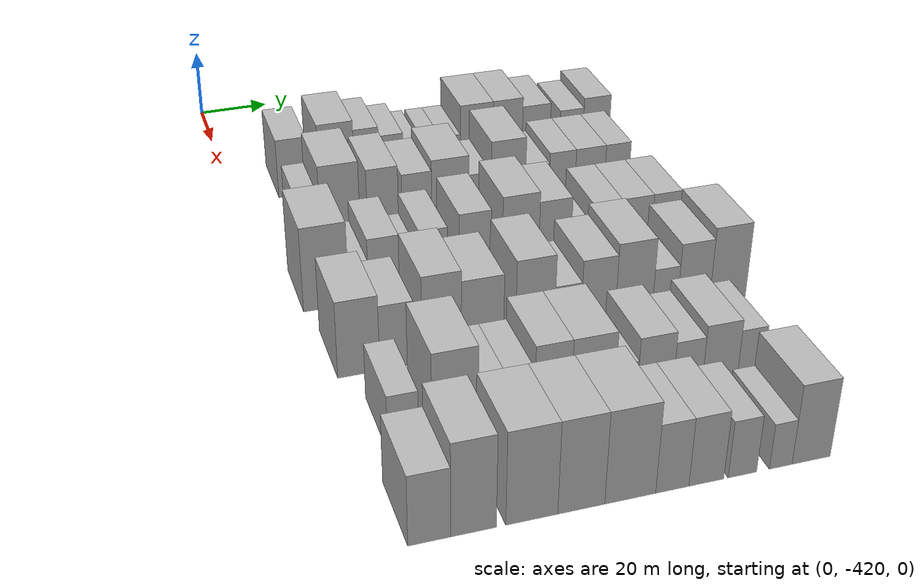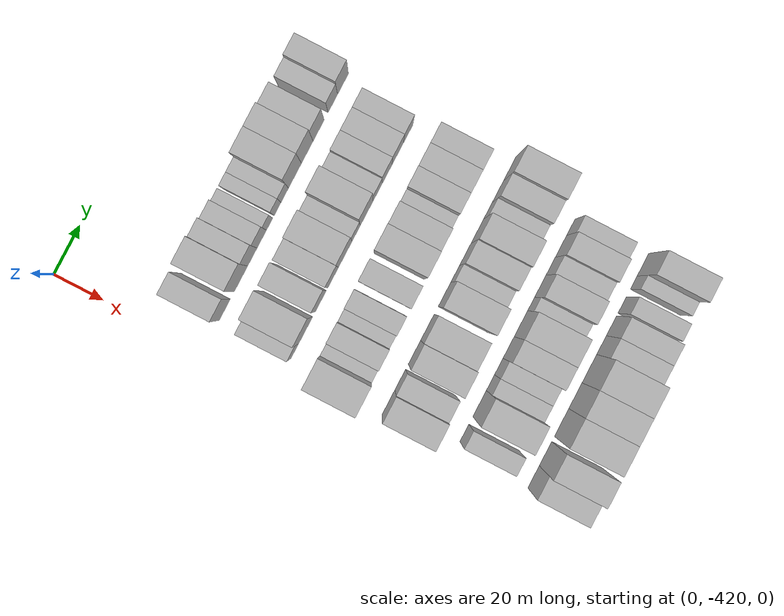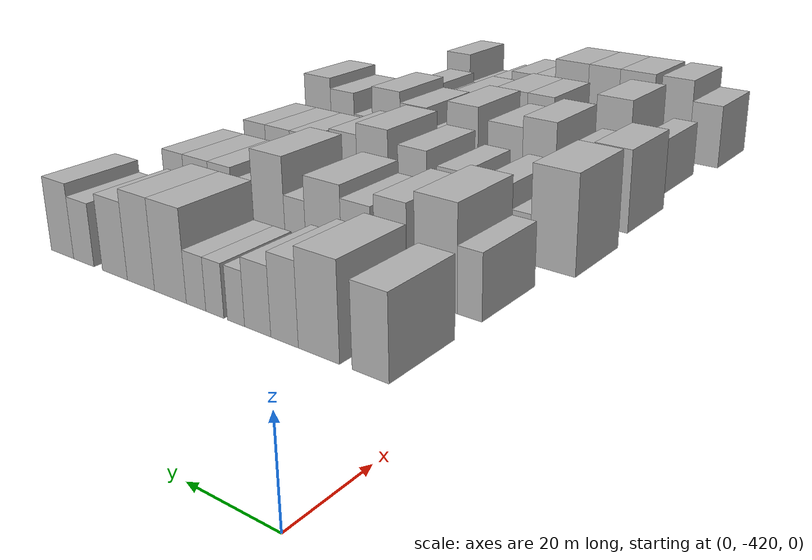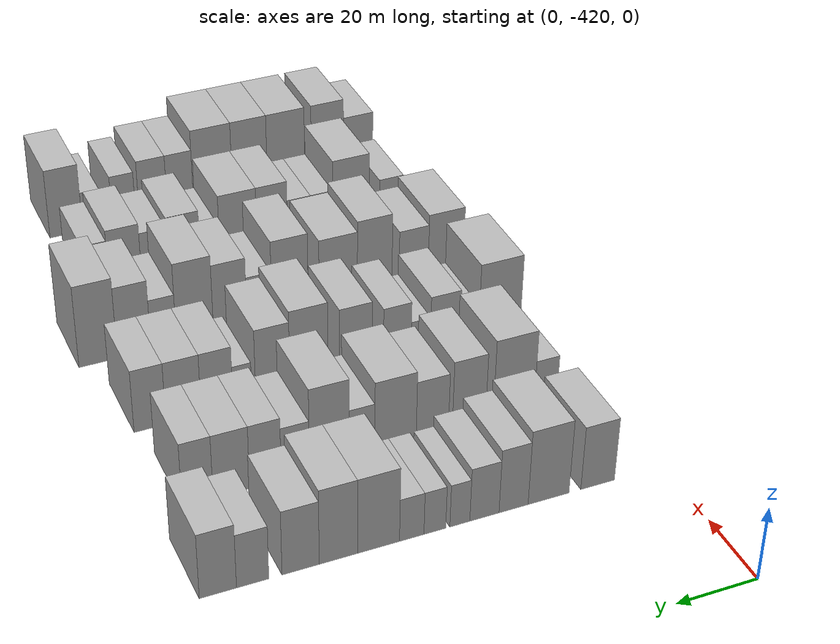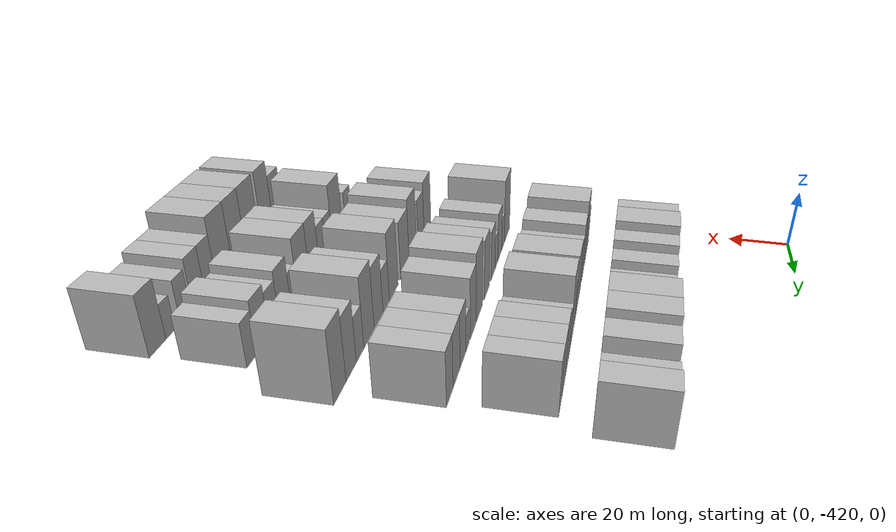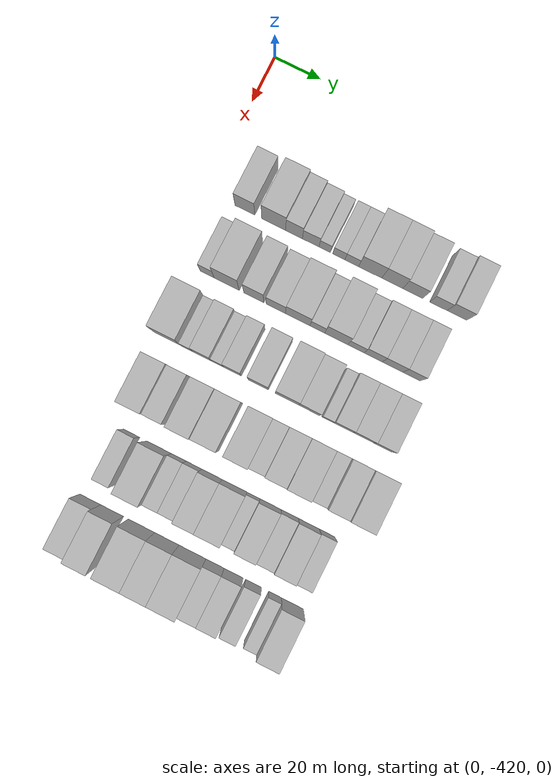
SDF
<sdf version="1.6">
 <world name="default">
  <model name="building_13">
   <static>1</static>
   <pose>50.0000 -402.8632 0 0.000000 0.000000 0.000000</pose>
   <link name="link">
    <pose>0 0 9.00 0 0 0</pose>
    <collision name="collision"><geometry><box><size>20.0000 8.6158 18.0000</size></box></geometry></collision>
    <visual name="visual">
     <cast_shadows>0</cast_shadows>
     <geometry><box><size>20.0000 8.6158 18.0000</size></box></geometry>
     <material>
      <script>
       <uri>model://HANNAS_wall/materials/scripts</uri>
       <uri>model://HANNAS_wall/materials/textures</uri>
       <name>vrc/HANNAS_wall</name>
      </script>
     </material>
    </visual>
   </link>
  </model>
  <model name="building_14">
   <static>1</static>
   <pose>50.0000 -390.3938 0 0.000000 0.000000 0.000000</pose>
   <link name="link">
    <pose>0 0 10.50 0 0 0</pose>
    <collision name="collision"><geometry><box><size>20.0000 10.3229 21.0000</size></box></geometry></collision>
    <visual name="visual">
     <cast_shadows>0</cast_shadows>
     <geometry><box><size>20.0000 10.3229 21.0000</size></box></geometry>
     <material>
      <script>
       <uri>model://HANNAS_wall/materials/scripts</uri>
       <uri>model://HANNAS_wall/materials/textures</uri>
       <name>vrc/HANNAS_wall</name>
      </script>
     </material>
    </visual>
   </link>
  </model>
  <model name="building_15">
   <static>1</static>
   <pose>50.0000 -381.6118 0 0.000000 0.000000 0.000000</pose>
   <link name="link">
    <pose>0 0 9.00 0 0 0</pose>
    <collision name="collision"><geometry><box><size>20.0000 7.2413 18.0000</size></box></geometry></collision>
    <visual name="visual">
     <cast_shadows>0</cast_shadows>
     <geometry><box><size>20.0000 7.2413 18.0000</size></box></geometry>
     <material>
      <script>
       <uri>model://HANNAS_wall/materials/scripts</uri>
       <uri>model://HANNAS_wall/materials/textures</uri>
       <name>vrc/HANNAS_wall</name>
      </script>
     </material>
    </visual>
   </link>
  </model>
  <model name="building_16">
   <static>1</static>
   <pose>50.0000 -374.4007 0 0.000000 0.000000 0.000000</pose>
   <link name="link">
    <pose>0 0 7.50 0 0 0</pose>
    <collision name="collision"><geometry><box><size>20.0000 7.1808 15.0000</size></box></geometry></collision>
    <visual name="visual">
     <cast_shadows>0</cast_shadows>
     <geometry><box><size>20.0000 7.1808 15.0000</size></box></geometry>
     <material>
      <script>
       <uri>model://HANNAS_wall/materials/scripts</uri>
       <uri>model://HANNAS_wall/materials/textures</uri>
       <name>vrc/HANNAS_wall</name>
      </script>
     </material>
    </visual>
   </link>
  </model>
  <model name="building_17">
   <static>1</static>
   <pose>50.0000 -368.3718 0 0.000000 0.000000 0.000000</pose>
   <link name="link">
    <pose>0 0 6.00 0 0 0</pose>
    <collision name="collision"><geometry><box><size>20.0000 4.8771 12.0000</size></box></geometry></collision>
    <visual name="visual">
     <cast_shadows>0</cast_shadows>
     <geometry><box><size>20.0000 4.8771 12.0000</size></box></geometry>
     <material>
      <script>
       <uri>model://HANNAS_wall/materials/scripts</uri>
       <uri>model://HANNAS_wall/materials/textures</uri>
       <name>vrc/HANNAS_wall</name>
      </script>
     </material>
    </visual>
   </link>
  </model>
  <model name="building_18">
   <static>1</static>
   <pose>50.0000 -362.2964 0 0.000000 0.000000 0.000000</pose>
   <link name="link">
    <pose>0 0 6.00 0 0 0</pose>
    <collision name="collision"><geometry><box><size>20.0000 5.2736 12.0000</size></box></geometry></collision>
    <visual name="visual">
     <cast_shadows>0</cast_shadows>
     <geometry><box><size>20.0000 5.2736 12.0000</size></box></geometry>
     <material>
      <script>
       <uri>model://HANNAS_wall/materials/scripts</uri>
       <uri>model://HANNAS_wall/materials/textures</uri>
       <name>vrc/HANNAS_wall</name>
      </script>
     </material>
    </visual>
   </link>
  </model>
  <model name="building_19">
   <static>1</static>
   <pose>50.0000 -356.7223 0 0.000000 0.000000 0.000000</pose>
   <link name="link">
    <pose>0 0 6.00 0 0 0</pose>
    <collision name="collision"><geometry><box><size>20.0000 5.8747 12.0000</size></box></geometry></collision>
    <visual name="visual">
     <cast_shadows>0</cast_shadows>
     <geometry><box><size>20.0000 5.8747 12.0000</size></box></geometry>
     <material>
      <script>
       <uri>model://HANNAS_wall/materials/scripts</uri>
       <uri>model://HANNAS_wall/materials/textures</uri>
       <name>vrc/HANNAS_wall</name>
      </script>
     </material>
    </visual>
   </link>
  </model>
  <model name="building_20">
   <static>1</static>
   <pose>50.0000 -348.7976 0 0.000000 0.000000 0.000000</pose>
   <link name="link">
    <pose>0 0 10.50 0 0 0</pose>
    <collision name="collision"><geometry><box><size>20.0000 9.9748 21.0000</size></box></geometry></collision>
    <visual name="visual">
     <cast_shadows>0</cast_shadows>
     <geometry><box><size>20.0000 9.9748 21.0000</size></box></geometry>
     <material>
      <script>
       <uri>model://HANNAS_wall/materials/scripts</uri>
       <uri>model://HANNAS_wall/materials/textures</uri>
       <name>vrc/HANNAS_wall</name>
      </script>
     </material>
    </visual>
   </link>
  </model>
  <model name="building_21">
   <static>1</static>
   <pose>50.0000 -339.3319 0 0.000000 0.000000 0.000000</pose>
   <link name="link">
    <pose>0 0 10.50 0 0 0</pose>
    <collision name="collision"><geometry><box><size>20.0000 8.9566 21.0000</size></box></geometry></collision>
    <visual name="visual">
     <cast_shadows>0</cast_shadows>
     <geometry><box><size>20.0000 8.9566 21.0000</size></box></geometry>
     <material>
      <script>
       <uri>model://HANNAS_wall/materials/scripts</uri>
       <uri>model://HANNAS_wall/materials/textures</uri>
       <name>vrc/HANNAS_wall</name>
      </script>
     </material>
    </visual>
   </link>
  </model>
  <model name="building_22">
   <static>1</static>
   <pose>50.0000 -330.5562 0 0.000000 0.000000 0.000000</pose>
   <link name="link">
    <pose>0 0 9.00 0 0 0</pose>
    <collision name="collision"><geometry><box><size>20.0000 8.5948 18.0000</size></box></geometry></collision>
    <visual name="visual">
     <cast_shadows>0</cast_shadows>
     <geometry><box><size>20.0000 8.5948 18.0000</size></box></geometry>
     <material>
      <script>
       <uri>model://HANNAS_wall/materials/scripts</uri>
       <uri>model://HANNAS_wall/materials/textures</uri>
       <name>vrc/HANNAS_wall</name>
      </script>
     </material>
    </visual>
   </link>
  </model>
  <model name="building_23">
   <static>1</static>
   <pose>50.0000 -319.5803 0 0.000000 0.000000 0.000000</pose>
   <link name="link">
    <pose>0 0 7.50 0 0 0</pose>
    <collision name="collision"><geometry><box><size>20.0000 7.3570 15.0000</size></box></geometry></collision>
    <visual name="visual">
     <cast_shadows>0</cast_shadows>
     <geometry><box><size>20.0000 7.3570 15.0000</size></box></geometry>
     <material>
      <script>
       <uri>model://HANNAS_wall/materials/scripts</uri>
       <uri>model://HANNAS_wall/materials/textures</uri>
       <name>vrc/HANNAS_wall</name>
      </script>
     </material>
    </visual>
   </link>
  </model>
  <model name="building_24">
   <static>1</static>
   <pose>50.0000 -311.7137 0 0.000000 0.000000 0.000000</pose>
   <link name="link">
    <pose>0 0 9.00 0 0 0</pose>
    <collision name="collision"><geometry><box><size>20.0000 8.3763 18.0000</size></box></geometry></collision>
    <visual name="visual">
     <cast_shadows>0</cast_shadows>
     <geometry><box><size>20.0000 8.3763 18.0000</size></box></geometry>
     <material>
      <script>
       <uri>model://HANNAS_wall/materials/scripts</uri>
       <uri>model://HANNAS_wall/materials/textures</uri>
       <name>vrc/HANNAS_wall</name>
      </script>
     </material>
    </visual>
   </link>
  </model>
  <model name="building_130">
   <static>1</static>
   <pose>79.0000 -404.3512 0 0.000000 0.000000 0.000000</pose>
   <link name="link">
    <pose>0 0 7.50 0 0 0</pose>
    <collision name="collision"><geometry><box><size>20.0000 6.0282 15.0000</size></box></geometry></collision>
    <visual name="visual">
     <cast_shadows>0</cast_shadows>
     <geometry><box><size>20.0000 6.0282 15.0000</size></box></geometry>
     <material>
      <script>
       <uri>model://HANNAS_wall/materials/scripts</uri>
       <uri>model://HANNAS_wall/materials/textures</uri>
       <name>vrc/HANNAS_wall</name>
      </script>
     </material>
    </visual>
   </link>
  </model>
  <model name="building_131">
   <static>1</static>
   <pose>79.0000 -395.9586 0 0.000000 0.000000 0.000000</pose>
   <link name="link">
    <pose>0 0 12.00 0 0 0</pose>
    <collision name="collision"><geometry><box><size>20.0000 10.7570 24.0000</size></box></geometry></collision>
    <visual name="visual">
     <cast_shadows>0</cast_shadows>
     <geometry><box><size>20.0000 10.7570 24.0000</size></box></geometry>
     <material>
      <script>
       <uri>model://HANNAS_wall/materials/scripts</uri>
       <uri>model://HANNAS_wall/materials/textures</uri>
       <name>vrc/HANNAS_wall</name>
      </script>
     </material>
    </visual>
   </link>
  </model>
  <model name="building_132">
   <static>1</static>
   <pose>79.0000 -384.2821 0 0.000000 0.000000 0.000000</pose>
   <link name="link">
    <pose>0 0 10.50 0 0 0</pose>
    <collision name="collision"><geometry><box><size>20.0000 8.5961 21.0000</size></box></geometry></collision>
    <visual name="visual">
     <cast_shadows>0</cast_shadows>
     <geometry><box><size>20.0000 8.5961 21.0000</size></box></geometry>
     <material>
      <script>
       <uri>model://HANNAS_wall/materials/scripts</uri>
       <uri>model://HANNAS_wall/materials/textures</uri>
       <name>vrc/HANNAS_wall</name>
      </script>
     </material>
    </visual>
   </link>
  </model>
  <model name="building_133">
   <static>1</static>
   <pose>79.0000 -374.8531 0 0.000000 0.000000 0.000000</pose>
   <link name="link">
    <pose>0 0 9.00 0 0 0</pose>
    <collision name="collision"><geometry><box><size>20.0000 8.2618 18.0000</size></box></geometry></collision>
    <visual name="visual">
     <cast_shadows>0</cast_shadows>
     <geometry><box><size>20.0000 8.2618 18.0000</size></box></geometry>
     <material>
      <script>
       <uri>model://HANNAS_wall/materials/scripts</uri>
       <uri>model://HANNAS_wall/materials/textures</uri>
       <name>vrc/HANNAS_wall</name>
      </script>
     </material>
    </visual>
   </link>
  </model>
  <model name="building_134">
   <static>1</static>
   <pose>79.0000 -365.4770 0 0.000000 0.000000 0.000000</pose>
   <link name="link">
    <pose>0 0 10.50 0 0 0</pose>
    <collision name="collision"><geometry><box><size>20.0000 10.4905 21.0000</size></box></geometry></collision>
    <visual name="visual">
     <cast_shadows>0</cast_shadows>
     <geometry><box><size>20.0000 10.4905 21.0000</size></box></geometry>
     <material>
      <script>
       <uri>model://HANNAS_wall/materials/scripts</uri>
       <uri>model://HANNAS_wall/materials/textures</uri>
       <name>vrc/HANNAS_wall</name>
      </script>
     </material>
    </visual>
   </link>
  </model>
  <model name="building_135">
   <static>1</static>
   <pose>79.0000 -357.0852 0 0.000000 0.000000 0.000000</pose>
   <link name="link">
    <pose>0 0 7.50 0 0 0</pose>
    <collision name="collision"><geometry><box><size>20.0000 6.2930 15.0000</size></box></geometry></collision>
    <visual name="visual">
     <cast_shadows>0</cast_shadows>
     <geometry><box><size>20.0000 6.2930 15.0000</size></box></geometry>
     <material>
      <script>
       <uri>model://HANNAS_wall/materials/scripts</uri>
       <uri>model://HANNAS_wall/materials/textures</uri>
       <name>vrc/HANNAS_wall</name>
      </script>
     </material>
    </visual>
   </link>
  </model>
  <model name="building_136">
   <static>1</static>
   <pose>79.0000 -349.0017 0 0.000000 0.000000 0.000000</pose>
   <link name="link">
    <pose>0 0 12.00 0 0 0</pose>
    <collision name="collision"><geometry><box><size>20.0000 9.8741 24.0000</size></box></geometry></collision>
    <visual name="visual">
     <cast_shadows>0</cast_shadows>
     <geometry><box><size>20.0000 9.8741 24.0000</size></box></geometry>
     <material>
      <script>
       <uri>model://HANNAS_wall/materials/scripts</uri>
       <uri>model://HANNAS_wall/materials/textures</uri>
       <name>vrc/HANNAS_wall</name>
      </script>
     </material>
    </visual>
   </link>
  </model>
  <model name="building_137">
   <static>1</static>
   <pose>79.0000 -340.6125 0 0.000000 0.000000 0.000000</pose>
   <link name="link">
    <pose>0 0 7.50 0 0 0</pose>
    <collision name="collision"><geometry><box><size>20.0000 6.9042 15.0000</size></box></geometry></collision>
    <visual name="visual">
     <cast_shadows>0</cast_shadows>
     <geometry><box><size>20.0000 6.9042 15.0000</size></box></geometry>
     <material>
      <script>
       <uri>model://HANNAS_wall/materials/scripts</uri>
       <uri>model://HANNAS_wall/materials/textures</uri>
       <name>vrc/HANNAS_wall</name>
      </script>
     </material>
    </visual>
   </link>
  </model>
  <model name="building_138">
   <static>1</static>
   <pose>79.0000 -333.3374 0 0.000000 0.000000 0.000000</pose>
   <link name="link">
    <pose>0 0 9.00 0 0 0</pose>
    <collision name="collision"><geometry><box><size>20.0000 7.6460 18.0000</size></box></geometry></collision>
    <visual name="visual">
     <cast_shadows>0</cast_shadows>
     <geometry><box><size>20.0000 7.6460 18.0000</size></box></geometry>
     <material>
      <script>
       <uri>model://HANNAS_wall/materials/scripts</uri>
       <uri>model://HANNAS_wall/materials/textures</uri>
       <name>vrc/HANNAS_wall</name>
      </script>
     </material>
    </visual>
   </link>
  </model>
  <model name="building_139">
   <static>1</static>
   <pose>79.0000 -325.1473 0 0.000000 0.000000 0.000000</pose>
   <link name="link">
    <pose>0 0 9.00 0 0 0</pose>
    <collision name="collision"><geometry><box><size>20.0000 8.7342 18.0000</size></box></geometry></collision>
    <visual name="visual">
     <cast_shadows>0</cast_shadows>
     <geometry><box><size>20.0000 8.7342 18.0000</size></box></geometry>
     <material>
      <script>
       <uri>model://HANNAS_wall/materials/scripts</uri>
       <uri>model://HANNAS_wall/materials/textures</uri>
       <name>vrc/HANNAS_wall</name>
      </script>
     </material>
    </visual>
   </link>
  </model>
  <model name="building_140">
   <static>1</static>
   <pose>79.0000 -317.0994 0 0.000000 0.000000 0.000000</pose>
   <link name="link">
    <pose>0 0 9.00 0 0 0</pose>
    <collision name="collision"><geometry><box><size>20.0000 7.3615 18.0000</size></box></geometry></collision>
    <visual name="visual">
     <cast_shadows>0</cast_shadows>
     <geometry><box><size>20.0000 7.3615 18.0000</size></box></geometry>
     <material>
      <script>
       <uri>model://HANNAS_wall/materials/scripts</uri>
       <uri>model://HANNAS_wall/materials/textures</uri>
       <name>vrc/HANNAS_wall</name>
      </script>
     </material>
    </visual>
   </link>
  </model>
  <model name="building_238">
   <static>1</static>
   <pose>108.0000 -406.3796 0 0.000000 0.000000 0.000000</pose>
   <link name="link">
    <pose>0 0 12.00 0 0 0</pose>
    <collision name="collision"><geometry><box><size>20.0000 11.5512 24.0000</size></box></geometry></collision>
    <visual name="visual">
     <cast_shadows>0</cast_shadows>
     <geometry><box><size>20.0000 11.5512 24.0000</size></box></geometry>
     <material>
      <script>
       <uri>model://HANNAS_wall/materials/scripts</uri>
       <uri>model://HANNAS_wall/materials/textures</uri>
       <name>vrc/HANNAS_wall</name>
      </script>
     </material>
    </visual>
   </link>
  </model>
  <model name="building_239">
   <static>1</static>
   <pose>108.0000 -398.0628 0 0.000000 0.000000 0.000000</pose>
   <link name="link">
    <pose>0 0 6.00 0 0 0</pose>
    <collision name="collision"><geometry><box><size>20.0000 5.0823 12.0000</size></box></geometry></collision>
    <visual name="visual">
     <cast_shadows>0</cast_shadows>
     <geometry><box><size>20.0000 5.0823 12.0000</size></box></geometry>
     <material>
      <script>
       <uri>model://HANNAS_wall/materials/scripts</uri>
       <uri>model://HANNAS_wall/materials/textures</uri>
       <name>vrc/HANNAS_wall</name>
      </script>
     </material>
    </visual>
   </link>
  </model>
  <model name="building_240">
   <static>1</static>
   <pose>108.0000 -391.5006 0 0.000000 0.000000 0.000000</pose>
   <link name="link">
    <pose>0 0 9.00 0 0 0</pose>
    <collision name="collision"><geometry><box><size>20.0000 8.0421 18.0000</size></box></geometry></collision>
    <visual name="visual">
     <cast_shadows>0</cast_shadows>
     <geometry><box><size>20.0000 8.0421 18.0000</size></box></geometry>
     <material>
      <script>
       <uri>model://HANNAS_wall/materials/scripts</uri>
       <uri>model://HANNAS_wall/materials/textures</uri>
       <name>vrc/HANNAS_wall</name>
      </script>
     </material>
    </visual>
   </link>
  </model>
  <model name="building_241">
   <static>1</static>
   <pose>108.0000 -384.8827 0 0.000000 0.000000 0.000000</pose>
   <link name="link">
    <pose>0 0 6.00 0 0 0</pose>
    <collision name="collision"><geometry><box><size>20.0000 5.1937 12.0000</size></box></geometry></collision>
    <visual name="visual">
     <cast_shadows>0</cast_shadows>
     <geometry><box><size>20.0000 5.1937 12.0000</size></box></geometry>
     <material>
      <script>
       <uri>model://HANNAS_wall/materials/scripts</uri>
       <uri>model://HANNAS_wall/materials/textures</uri>
       <name>vrc/HANNAS_wall</name>
      </script>
     </material>
    </visual>
   </link>
  </model>
  <model name="building_242">
   <static>1</static>
   <pose>108.0000 -378.6012 0 0.000000 0.000000 0.000000</pose>
   <link name="link">
    <pose>0 0 9.00 0 0 0</pose>
    <collision name="collision"><geometry><box><size>20.0000 7.3694 18.0000</size></box></geometry></collision>
    <visual name="visual">
     <cast_shadows>0</cast_shadows>
     <geometry><box><size>20.0000 7.3694 18.0000</size></box></geometry>
     <material>
      <script>
       <uri>model://HANNAS_wall/materials/scripts</uri>
       <uri>model://HANNAS_wall/materials/textures</uri>
       <name>vrc/HANNAS_wall</name>
      </script>
     </material>
    </visual>
   </link>
  </model>
  <model name="building_243">
   <static>1</static>
   <pose>108.0000 -367.6492 0 0.000000 0.000000 0.000000</pose>
   <link name="link">
    <pose>0 0 10.50 0 0 0</pose>
    <collision name="collision"><geometry><box><size>20.0000 8.5346 21.0000</size></box></geometry></collision>
    <visual name="visual">
     <cast_shadows>0</cast_shadows>
     <geometry><box><size>20.0000 8.5346 21.0000</size></box></geometry>
     <material>
      <script>
       <uri>model://HANNAS_wall/materials/scripts</uri>
       <uri>model://HANNAS_wall/materials/textures</uri>
       <name>vrc/HANNAS_wall</name>
      </script>
     </material>
    </visual>
   </link>
  </model>
  <model name="building_244">
   <static>1</static>
   <pose>108.0000 -355.4500 0 0.000000 0.000000 0.000000</pose>
   <link name="link">
    <pose>0 0 12.00 0 0 0</pose>
    <collision name="collision"><geometry><box><size>20.0000 9.8638 24.0000</size></box></geometry></collision>
    <visual name="visual">
     <cast_shadows>0</cast_shadows>
     <geometry><box><size>20.0000 9.8638 24.0000</size></box></geometry>
     <material>
      <script>
       <uri>model://HANNAS_wall/materials/scripts</uri>
       <uri>model://HANNAS_wall/materials/textures</uri>
       <name>vrc/HANNAS_wall</name>
      </script>
     </material>
    </visual>
   </link>
  </model>
  <model name="building_245">
   <static>1</static>
   <pose>108.0000 -346.1369 0 0.000000 0.000000 0.000000</pose>
   <link name="link">
    <pose>0 0 10.50 0 0 0</pose>
    <collision name="collision"><geometry><box><size>20.0000 8.7625 21.0000</size></box></geometry></collision>
    <visual name="visual">
     <cast_shadows>0</cast_shadows>
     <geometry><box><size>20.0000 8.7625 21.0000</size></box></geometry>
     <material>
      <script>
       <uri>model://HANNAS_wall/materials/scripts</uri>
       <uri>model://HANNAS_wall/materials/textures</uri>
       <name>vrc/HANNAS_wall</name>
      </script>
     </material>
    </visual>
   </link>
  </model>
  <model name="building_246">
   <static>1</static>
   <pose>108.0000 -338.3541 0 0.000000 0.000000 0.000000</pose>
   <link name="link">
    <pose>0 0 6.00 0 0 0</pose>
    <collision name="collision"><geometry><box><size>20.0000 4.8031 12.0000</size></box></geometry></collision>
    <visual name="visual">
     <cast_shadows>0</cast_shadows>
     <geometry><box><size>20.0000 4.8031 12.0000</size></box></geometry>
     <material>
      <script>
       <uri>model://HANNAS_wall/materials/scripts</uri>
       <uri>model://HANNAS_wall/materials/textures</uri>
       <name>vrc/HANNAS_wall</name>
      </script>
     </material>
    </visual>
   </link>
  </model>
  <model name="building_247">
   <static>1</static>
   <pose>108.0000 -331.9525 0 0.000000 0.000000 0.000000</pose>
   <link name="link">
    <pose>0 0 9.00 0 0 0</pose>
    <collision name="collision"><geometry><box><size>20.0000 8.0001 18.0000</size></box></geometry></collision>
    <visual name="visual">
     <cast_shadows>0</cast_shadows>
     <geometry><box><size>20.0000 8.0001 18.0000</size></box></geometry>
     <material>
      <script>
       <uri>model://HANNAS_wall/materials/scripts</uri>
       <uri>model://HANNAS_wall/materials/textures</uri>
       <name>vrc/HANNAS_wall</name>
      </script>
     </material>
    </visual>
   </link>
  </model>
  <model name="building_248">
   <static>1</static>
   <pose>108.0000 -323.5618 0 0.000000 0.000000 0.000000</pose>
   <link name="link">
    <pose>0 0 9.00 0 0 0</pose>
    <collision name="collision"><geometry><box><size>20.0000 8.7813 18.0000</size></box></geometry></collision>
    <visual name="visual">
     <cast_shadows>0</cast_shadows>
     <geometry><box><size>20.0000 8.7813 18.0000</size></box></geometry>
     <material>
      <script>
       <uri>model://HANNAS_wall/materials/scripts</uri>
       <uri>model://HANNAS_wall/materials/textures</uri>
       <name>vrc/HANNAS_wall</name>
      </script>
     </material>
    </visual>
   </link>
  </model>
  <model name="building_249">
   <static>1</static>
   <pose>108.0000 -315.2406 0 0.000000 0.000000 0.000000</pose>
   <link name="link">
    <pose>0 0 9.00 0 0 0</pose>
    <collision name="collision"><geometry><box><size>20.0000 7.8610 18.0000</size></box></geometry></collision>
    <visual name="visual">
     <cast_shadows>0</cast_shadows>
     <geometry><box><size>20.0000 7.8610 18.0000</size></box></geometry>
     <material>
      <script>
       <uri>model://HANNAS_wall/materials/scripts</uri>
       <uri>model://HANNAS_wall/materials/textures</uri>
       <name>vrc/HANNAS_wall</name>
      </script>
     </material>
    </visual>
   </link>
  </model>
  <model name="building_345">
   <static>1</static>
   <pose>137.0000 -405.0927 0 0.000000 0.000000 0.000000</pose>
   <link name="link">
    <pose>0 0 10.50 0 0 0</pose>
    <collision name="collision"><geometry><box><size>20.0000 10.0428 21.0000</size></box></geometry></collision>
    <visual name="visual">
     <cast_shadows>0</cast_shadows>
     <geometry><box><size>20.0000 10.0428 21.0000</size></box></geometry>
     <material>
      <script>
       <uri>model://HANNAS_wall/materials/scripts</uri>
       <uri>model://HANNAS_wall/materials/textures</uri>
       <name>vrc/HANNAS_wall</name>
      </script>
     </material>
    </visual>
   </link>
  </model>
  <model name="building_346">
   <static>1</static>
   <pose>137.0000 -395.9506 0 0.000000 0.000000 0.000000</pose>
   <link name="link">
    <pose>0 0 9.00 0 0 0</pose>
    <collision name="collision"><geometry><box><size>20.0000 8.2415 18.0000</size></box></geometry></collision>
    <visual name="visual">
     <cast_shadows>0</cast_shadows>
     <geometry><box><size>20.0000 8.2415 18.0000</size></box></geometry>
     <material>
      <script>
       <uri>model://HANNAS_wall/materials/scripts</uri>
       <uri>model://HANNAS_wall/materials/textures</uri>
       <name>vrc/HANNAS_wall</name>
      </script>
     </material>
    </visual>
   </link>
  </model>
  <model name="building_347">
   <static>1</static>
   <pose>137.0000 -385.0116 0 0.000000 0.000000 0.000000</pose>
   <link name="link">
    <pose>0 0 12.00 0 0 0</pose>
    <collision name="collision"><geometry><box><size>20.0000 9.6364 24.0000</size></box></geometry></collision>
    <visual name="visual">
     <cast_shadows>0</cast_shadows>
     <geometry><box><size>20.0000 9.6364 24.0000</size></box></geometry>
     <material>
      <script>
       <uri>model://HANNAS_wall/materials/scripts</uri>
       <uri>model://HANNAS_wall/materials/textures</uri>
       <name>vrc/HANNAS_wall</name>
      </script>
     </material>
    </visual>
   </link>
  </model>
  <model name="building_348">
   <static>1</static>
   <pose>137.0000 -374.9479 0 0.000000 0.000000 0.000000</pose>
   <link name="link">
    <pose>0 0 10.50 0 0 0</pose>
    <collision name="collision"><geometry><box><size>20.0000 10.4910 21.0000</size></box></geometry></collision>
    <visual name="visual">
     <cast_shadows>0</cast_shadows>
     <geometry><box><size>20.0000 10.4910 21.0000</size></box></geometry>
     <material>
      <script>
       <uri>model://HANNAS_wall/materials/scripts</uri>
       <uri>model://HANNAS_wall/materials/textures</uri>
       <name>vrc/HANNAS_wall</name>
      </script>
     </material>
    </visual>
   </link>
  </model>
  <model name="building_349">
   <static>1</static>
   <pose>137.0000 -361.7807 0 0.000000 0.000000 0.000000</pose>
   <link name="link">
    <pose>0 0 12.00 0 0 0</pose>
    <collision name="collision"><geometry><box><size>20.0000 9.8434 24.0000</size></box></geometry></collision>
    <visual name="visual">
     <cast_shadows>0</cast_shadows>
     <geometry><box><size>20.0000 9.8434 24.0000</size></box></geometry>
     <material>
      <script>
       <uri>model://HANNAS_wall/materials/scripts</uri>
       <uri>model://HANNAS_wall/materials/textures</uri>
       <name>vrc/HANNAS_wall</name>
      </script>
     </material>
    </visual>
   </link>
  </model>
  <model name="building_350">
   <static>1</static>
   <pose>137.0000 -353.4885 0 0.000000 0.000000 0.000000</pose>
   <link name="link">
    <pose>0 0 7.50 0 0 0</pose>
    <collision name="collision"><geometry><box><size>20.0000 6.7409 15.0000</size></box></geometry></collision>
    <visual name="visual">
     <cast_shadows>0</cast_shadows>
     <geometry><box><size>20.0000 6.7409 15.0000</size></box></geometry>
     <material>
      <script>
       <uri>model://HANNAS_wall/materials/scripts</uri>
       <uri>model://HANNAS_wall/materials/textures</uri>
       <name>vrc/HANNAS_wall</name>
      </script>
     </material>
    </visual>
   </link>
  </model>
  <model name="building_351">
   <static>1</static>
   <pose>137.0000 -345.6631 0 0.000000 0.000000 0.000000</pose>
   <link name="link">
    <pose>0 0 10.50 0 0 0</pose>
    <collision name="collision"><geometry><box><size>20.0000 8.9100 21.0000</size></box></geometry></collision>
    <visual name="visual">
     <cast_shadows>0</cast_shadows>
     <geometry><box><size>20.0000 8.9100 21.0000</size></box></geometry>
     <material>
      <script>
       <uri>model://HANNAS_wall/materials/scripts</uri>
       <uri>model://HANNAS_wall/materials/textures</uri>
       <name>vrc/HANNAS_wall</name>
      </script>
     </material>
    </visual>
   </link>
  </model>
  <model name="building_352">
   <static>1</static>
   <pose>137.0000 -336.3282 0 0.000000 0.000000 0.000000</pose>
   <link name="link">
    <pose>0 0 12.00 0 0 0</pose>
    <collision name="collision"><geometry><box><size>20.0000 9.7599 24.0000</size></box></geometry></collision>
    <visual name="visual">
     <cast_shadows>0</cast_shadows>
     <geometry><box><size>20.0000 9.7599 24.0000</size></box></geometry>
     <material>
      <script>
       <uri>model://HANNAS_wall/materials/scripts</uri>
       <uri>model://HANNAS_wall/materials/textures</uri>
       <name>vrc/HANNAS_wall</name>
      </script>
     </material>
    </visual>
   </link>
  </model>
  <model name="building_353">
   <static>1</static>
   <pose>137.0000 -328.1279 0 0.000000 0.000000 0.000000</pose>
   <link name="link">
    <pose>0 0 7.50 0 0 0</pose>
    <collision name="collision"><geometry><box><size>20.0000 6.6406 15.0000</size></box></geometry></collision>
    <visual name="visual">
     <cast_shadows>0</cast_shadows>
     <geometry><box><size>20.0000 6.6406 15.0000</size></box></geometry>
     <material>
      <script>
       <uri>model://HANNAS_wall/materials/scripts</uri>
       <uri>model://HANNAS_wall/materials/textures</uri>
       <name>vrc/HANNAS_wall</name>
      </script>
     </material>
    </visual>
   </link>
  </model>
  <model name="building_354">
   <static>1</static>
   <pose>137.0000 -320.4691 0 0.000000 0.000000 0.000000</pose>
   <link name="link">
    <pose>0 0 10.50 0 0 0</pose>
    <collision name="collision"><geometry><box><size>20.0000 8.6770 21.0000</size></box></geometry></collision>
    <visual name="visual">
     <cast_shadows>0</cast_shadows>
     <geometry><box><size>20.0000 8.6770 21.0000</size></box></geometry>
     <material>
      <script>
       <uri>model://HANNAS_wall/materials/scripts</uri>
       <uri>model://HANNAS_wall/materials/textures</uri>
       <name>vrc/HANNAS_wall</name>
      </script>
     </material>
    </visual>
   </link>
  </model>
  <model name="building_355">
   <static>1</static>
   <pose>137.0000 -311.2210 0 0.000000 0.000000 0.000000</pose>
   <link name="link">
    <pose>0 0 12.00 0 0 0</pose>
    <collision name="collision"><geometry><box><size>20.0000 9.8192 24.0000</size></box></geometry></collision>
    <visual name="visual">
     <cast_shadows>0</cast_shadows>
     <geometry><box><size>20.0000 9.8192 24.0000</size></box></geometry>
     <material>
      <script>
       <uri>model://HANNAS_wall/materials/scripts</uri>
       <uri>model://HANNAS_wall/materials/textures</uri>
       <name>vrc/HANNAS_wall</name>
      </script>
     </material>
    </visual>
   </link>
  </model>
  <model name="building_457">
   <static>1</static>
   <pose>166.0000 -402.2239 0 0.000000 0.000000 0.000000</pose>
   <link name="link">
    <pose>0 0 7.50 0 0 0</pose>
    <collision name="collision"><geometry><box><size>20.0000 6.9403 15.0000</size></box></geometry></collision>
    <visual name="visual">
     <cast_shadows>0</cast_shadows>
     <geometry><box><size>20.0000 6.9403 15.0000</size></box></geometry>
     <material>
      <script>
       <uri>model://HANNAS_wall/materials/scripts</uri>
       <uri>model://HANNAS_wall/materials/textures</uri>
       <name>vrc/HANNAS_wall</name>
      </script>
     </material>
    </visual>
   </link>
  </model>
  <model name="building_458">
   <static>1</static>
   <pose>166.0000 -390.4869 0 0.000000 0.000000 0.000000</pose>
   <link name="link">
    <pose>0 0 12.00 0 0 0</pose>
    <collision name="collision"><geometry><box><size>20.0000 10.5338 24.0000</size></box></geometry></collision>
    <visual name="visual">
     <cast_shadows>0</cast_shadows>
     <geometry><box><size>20.0000 10.5338 24.0000</size></box></geometry>
     <material>
      <script>
       <uri>model://HANNAS_wall/materials/scripts</uri>
       <uri>model://HANNAS_wall/materials/textures</uri>
       <name>vrc/HANNAS_wall</name>
      </script>
     </material>
    </visual>
   </link>
  </model>
  <model name="building_459">
   <static>1</static>
   <pose>166.0000 -382.0645 0 0.000000 0.000000 0.000000</pose>
   <link name="link">
    <pose>0 0 7.50 0 0 0</pose>
    <collision name="collision"><geometry><box><size>20.0000 6.3110 15.0000</size></box></geometry></collision>
    <visual name="visual">
     <cast_shadows>0</cast_shadows>
     <geometry><box><size>20.0000 6.3110 15.0000</size></box></geometry>
     <material>
      <script>
       <uri>model://HANNAS_wall/materials/scripts</uri>
       <uri>model://HANNAS_wall/materials/textures</uri>
       <name>vrc/HANNAS_wall</name>
      </script>
     </material>
    </visual>
   </link>
  </model>
  <model name="building_460">
   <static>1</static>
   <pose>166.0000 -375.5951 0 0.000000 0.000000 0.000000</pose>
   <link name="link">
    <pose>0 0 7.50 0 0 0</pose>
    <collision name="collision"><geometry><box><size>20.0000 6.6277 15.0000</size></box></geometry></collision>
    <visual name="visual">
     <cast_shadows>0</cast_shadows>
     <geometry><box><size>20.0000 6.6277 15.0000</size></box></geometry>
     <material>
      <script>
       <uri>model://HANNAS_wall/materials/scripts</uri>
       <uri>model://HANNAS_wall/materials/textures</uri>
       <name>vrc/HANNAS_wall</name>
      </script>
     </material>
    </visual>
   </link>
  </model>
  <model name="building_461">
   <static>1</static>
   <pose>166.0000 -367.9597 0 0.000000 0.000000 0.000000</pose>
   <link name="link">
    <pose>0 0 10.50 0 0 0</pose>
    <collision name="collision"><geometry><box><size>20.0000 8.6431 21.0000</size></box></geometry></collision>
    <visual name="visual">
     <cast_shadows>0</cast_shadows>
     <geometry><box><size>20.0000 8.6431 21.0000</size></box></geometry>
     <material>
      <script>
       <uri>model://HANNAS_wall/materials/scripts</uri>
       <uri>model://HANNAS_wall/materials/textures</uri>
       <name>vrc/HANNAS_wall</name>
      </script>
     </material>
    </visual>
   </link>
  </model>
  <model name="building_462">
   <static>1</static>
   <pose>166.0000 -358.4221 0 0.000000 0.000000 0.000000</pose>
   <link name="link">
    <pose>0 0 10.50 0 0 0</pose>
    <collision name="collision"><geometry><box><size>20.0000 10.4321 21.0000</size></box></geometry></collision>
    <visual name="visual">
     <cast_shadows>0</cast_shadows>
     <geometry><box><size>20.0000 10.4321 21.0000</size></box></geometry>
     <material>
      <script>
       <uri>model://HANNAS_wall/materials/scripts</uri>
       <uri>model://HANNAS_wall/materials/textures</uri>
       <name>vrc/HANNAS_wall</name>
      </script>
     </material>
    </visual>
   </link>
  </model>
  <model name="building_463">
   <static>1</static>
   <pose>166.0000 -350.4836 0 0.000000 0.000000 0.000000</pose>
   <link name="link">
    <pose>0 0 6.00 0 0 0</pose>
    <collision name="collision"><geometry><box><size>20.0000 5.4449 12.0000</size></box></geometry></collision>
    <visual name="visual">
     <cast_shadows>0</cast_shadows>
     <geometry><box><size>20.0000 5.4449 12.0000</size></box></geometry>
     <material>
      <script>
       <uri>model://HANNAS_wall/materials/scripts</uri>
       <uri>model://HANNAS_wall/materials/textures</uri>
       <name>vrc/HANNAS_wall</name>
      </script>
     </material>
    </visual>
   </link>
  </model>
  <model name="building_464">
   <static>1</static>
   <pose>166.0000 -343.3395 0 0.000000 0.000000 0.000000</pose>
   <link name="link">
    <pose>0 0 9.00 0 0 0</pose>
    <collision name="collision"><geometry><box><size>20.0000 8.8433 18.0000</size></box></geometry></collision>
    <visual name="visual">
     <cast_shadows>0</cast_shadows>
     <geometry><box><size>20.0000 8.8433 18.0000</size></box></geometry>
     <material>
      <script>
       <uri>model://HANNAS_wall/materials/scripts</uri>
       <uri>model://HANNAS_wall/materials/textures</uri>
       <name>vrc/HANNAS_wall</name>
      </script>
     </material>
    </visual>
   </link>
  </model>
  <model name="building_465">
   <static>1</static>
   <pose>166.0000 -335.2858 0 0.000000 0.000000 0.000000</pose>
   <link name="link">
    <pose>0 0 7.50 0 0 0</pose>
    <collision name="collision"><geometry><box><size>20.0000 7.2641 15.0000</size></box></geometry></collision>
    <visual name="visual">
     <cast_shadows>0</cast_shadows>
     <geometry><box><size>20.0000 7.2641 15.0000</size></box></geometry>
     <material>
      <script>
       <uri>model://HANNAS_wall/materials/scripts</uri>
       <uri>model://HANNAS_wall/materials/textures</uri>
       <name>vrc/HANNAS_wall</name>
      </script>
     </material>
    </visual>
   </link>
  </model>
  <model name="building_466">
   <static>1</static>
   <pose>166.0000 -327.2556 0 0.000000 0.000000 0.000000</pose>
   <link name="link">
    <pose>0 0 9.00 0 0 0</pose>
    <collision name="collision"><geometry><box><size>20.0000 8.7962 18.0000</size></box></geometry></collision>
    <visual name="visual">
     <cast_shadows>0</cast_shadows>
     <geometry><box><size>20.0000 8.7962 18.0000</size></box></geometry>
     <material>
      <script>
       <uri>model://HANNAS_wall/materials/scripts</uri>
       <uri>model://HANNAS_wall/materials/textures</uri>
       <name>vrc/HANNAS_wall</name>
      </script>
     </material>
    </visual>
   </link>
  </model>
  <model name="building_467">
   <static>1</static>
   <pose>166.0000 -319.5885 0 0.000000 0.000000 0.000000</pose>
   <link name="link">
    <pose>0 0 7.50 0 0 0</pose>
    <collision name="collision"><geometry><box><size>20.0000 6.5380 15.0000</size></box></geometry></collision>
    <visual name="visual">
     <cast_shadows>0</cast_shadows>
     <geometry><box><size>20.0000 6.5380 15.0000</size></box></geometry>
     <material>
      <script>
       <uri>model://HANNAS_wall/materials/scripts</uri>
       <uri>model://HANNAS_wall/materials/textures</uri>
       <name>vrc/HANNAS_wall</name>
      </script>
     </material>
    </visual>
   </link>
  </model>
  <model name="building_572">
   <static>1</static>
   <pose>195.0000 -404.6959 0 0.000000 0.000000 0.000000</pose>
   <link name="link">
    <pose>0 0 9.00 0 0 0</pose>
    <collision name="collision"><geometry><box><size>20.0000 8.9062 18.0000</size></box></geometry></collision>
    <visual name="visual">
     <cast_shadows>0</cast_shadows>
     <geometry><box><size>20.0000 8.9062 18.0000</size></box></geometry>
     <material>
      <script>
       <uri>model://HANNAS_wall/materials/scripts</uri>
       <uri>model://HANNAS_wall/materials/textures</uri>
       <name>vrc/HANNAS_wall</name>
      </script>
     </material>
    </visual>
   </link>
  </model>
  <model name="building_573">
   <static>1</static>
   <pose>195.0000 -395.4079 0 0.000000 0.000000 0.000000</pose>
   <link name="link">
    <pose>0 0 12.00 0 0 0</pose>
    <collision name="collision"><geometry><box><size>20.0000 9.6698 24.0000</size></box></geometry></collision>
    <visual name="visual">
     <cast_shadows>0</cast_shadows>
     <geometry><box><size>20.0000 9.6698 24.0000</size></box></geometry>
     <material>
      <script>
       <uri>model://HANNAS_wall/materials/scripts</uri>
       <uri>model://HANNAS_wall/materials/textures</uri>
       <name>vrc/HANNAS_wall</name>
      </script>
     </material>
    </visual>
   </link>
  </model>
  <model name="building_574">
   <static>1</static>
   <pose>195.0000 -382.9745 0 0.000000 0.000000 0.000000</pose>
   <link name="link">
    <pose>0 0 12.00 0 0 0</pose>
    <collision name="collision"><geometry><box><size>20.0000 11.1972 24.0000</size></box></geometry></collision>
    <visual name="visual">
     <cast_shadows>0</cast_shadows>
     <geometry><box><size>20.0000 11.1972 24.0000</size></box></geometry>
     <material>
      <script>
       <uri>model://HANNAS_wall/materials/scripts</uri>
       <uri>model://HANNAS_wall/materials/textures</uri>
       <name>vrc/HANNAS_wall</name>
      </script>
     </material>
    </visual>
   </link>
  </model>
  <model name="building_575">
   <static>1</static>
   <pose>195.0000 -372.2204 0 0.000000 0.000000 0.000000</pose>
   <link name="link">
    <pose>0 0 12.00 0 0 0</pose>
    <collision name="collision"><geometry><box><size>20.0000 10.3109 24.0000</size></box></geometry></collision>
    <visual name="visual">
     <cast_shadows>0</cast_shadows>
     <geometry><box><size>20.0000 10.3109 24.0000</size></box></geometry>
     <material>
      <script>
       <uri>model://HANNAS_wall/materials/scripts</uri>
       <uri>model://HANNAS_wall/materials/textures</uri>
       <name>vrc/HANNAS_wall</name>
      </script>
     </material>
    </visual>
   </link>
  </model>
  <model name="building_576">
   <static>1</static>
   <pose>195.0000 -361.3748 0 0.000000 0.000000 0.000000</pose>
   <link name="link">
    <pose>0 0 12.00 0 0 0</pose>
    <collision name="collision"><geometry><box><size>20.0000 11.3803 24.0000</size></box></geometry></collision>
    <visual name="visual">
     <cast_shadows>0</cast_shadows>
     <geometry><box><size>20.0000 11.3803 24.0000</size></box></geometry>
     <material>
      <script>
       <uri>model://HANNAS_wall/materials/scripts</uri>
       <uri>model://HANNAS_wall/materials/textures</uri>
       <name>vrc/HANNAS_wall</name>
      </script>
     </material>
    </visual>
   </link>
  </model>
  <model name="building_577">
   <static>1</static>
   <pose>195.0000 -351.9109 0 0.000000 0.000000 0.000000</pose>
   <link name="link">
    <pose>0 0 9.00 0 0 0</pose>
    <collision name="collision"><geometry><box><size>20.0000 7.5475 18.0000</size></box></geometry></collision>
    <visual name="visual">
     <cast_shadows>0</cast_shadows>
     <geometry><box><size>20.0000 7.5475 18.0000</size></box></geometry>
     <material>
      <script>
       <uri>model://HANNAS_wall/materials/scripts</uri>
       <uri>model://HANNAS_wall/materials/textures</uri>
       <name>vrc/HANNAS_wall</name>
      </script>
     </material>
    </visual>
   </link>
  </model>
  <model name="building_578">
   <static>1</static>
   <pose>195.0000 -344.1309 0 0.000000 0.000000 0.000000</pose>
   <link name="link">
    <pose>0 0 9.00 0 0 0</pose>
    <collision name="collision"><geometry><box><size>20.0000 8.0126 18.0000</size></box></geometry></collision>
    <visual name="visual">
     <cast_shadows>0</cast_shadows>
     <geometry><box><size>20.0000 8.0126 18.0000</size></box></geometry>
     <material>
      <script>
       <uri>model://HANNAS_wall/materials/scripts</uri>
       <uri>model://HANNAS_wall/materials/textures</uri>
       <name>vrc/HANNAS_wall</name>
      </script>
     </material>
    </visual>
   </link>
  </model>
  <model name="building_579">
   <static>1</static>
   <pose>195.0000 -335.7981 0 0.000000 0.000000 0.000000</pose>
   <link name="link">
    <pose>0 0 7.50 0 0 0</pose>
    <collision name="collision"><geometry><box><size>20.0000 6.6530 15.0000</size></box></geometry></collision>
    <visual name="visual">
     <cast_shadows>0</cast_shadows>
     <geometry><box><size>20.0000 6.6530 15.0000</size></box></geometry>
     <material>
      <script>
       <uri>model://HANNAS_wall/materials/scripts</uri>
       <uri>model://HANNAS_wall/materials/textures</uri>
       <name>vrc/HANNAS_wall</name>
      </script>
     </material>
    </visual>
   </link>
  </model>
  <model name="building_580">
   <static>1</static>
   <pose>195.0000 -326.7969 0 0.000000 0.000000 0.000000</pose>
   <link name="link">
    <pose>0 0 6.00 0 0 0</pose>
    <collision name="collision"><geometry><box><size>20.0000 5.3494 12.0000</size></box></geometry></collision>
    <visual name="visual">
     <cast_shadows>0</cast_shadows>
     <geometry><box><size>20.0000 5.3494 12.0000</size></box></geometry>
     <material>
      <script>
       <uri>model://HANNAS_wall/materials/scripts</uri>
       <uri>model://HANNAS_wall/materials/textures</uri>
       <name>vrc/HANNAS_wall</name>
      </script>
     </material>
    </visual>
   </link>
  </model>
  <model name="building_581">
   <static>1</static>
   <pose>195.0000 -319.5600 0 0.000000 0.000000 0.000000</pose>
   <link name="link">
    <pose>0 0 10.50 0 0 0</pose>
    <collision name="collision"><geometry><box><size>20.0000 9.1245 21.0000</size></box></geometry></collision>
    <visual name="visual">
     <cast_shadows>0</cast_shadows>
     <geometry><box><size>20.0000 9.1245 21.0000</size></box></geometry>
     <material>
      <script>
       <uri>model://HANNAS_wall/materials/scripts</uri>
       <uri>model://HANNAS_wall/materials/textures</uri>
       <name>vrc/HANNAS_wall</name>
      </script>
     </material>
    </visual>
   </link>
  </model>
 </world>
</sdf>
